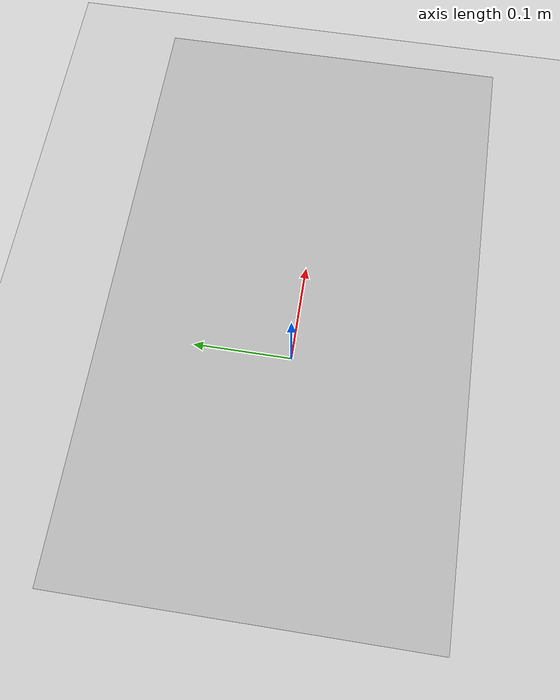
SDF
<?xml version="1.0" ?>
<sdf version="1.9">
  <world name="odometer_test">
    <!-- Земля -->
    <include>
      <uri>https://fuel.gazebosim.org/1.0/OpenRobotics/models/Ground Plane</uri>
    </include>

    <!-- Модель с датчиком -->
    <model name="test_vehicle">
      <pose>0 0 0.1 0 0 0</pose>

      <link name="chassis">
        <inertial>
          <mass>1.0</mass>
          <inertia>
            <ixx>0.01</ixx><iyy>0.01</iyy><izz>0.01</izz>
            <ixy>0</ixy><ixz>0</ixz><iyz>0</iyz>
          </inertia>
        </inertial>
        <visual name="chassis_visual">
          <geometry><box><size>0.5 0.3 0.1</size></box></geometry>
        </visual>
        <collision name="chassis_collision">
          <geometry><box><size>0.5 0.3 0.1</size></box></geometry>
        </collision>
      </link>

      <!-- Сенсор одометра -->
      <link name="sensor_link">
        <pose>0 0 0.05 0 0 0</pose>
        <sensor name="odometer" type="custom" gz:type="odometer">
          <always_on>1</always_on>
          <update_rate>100</update_rate>
          <topic>/odom</topic>
          <plugin filename="/home/laska/gz-sensors/examples/custom_sensor/build/libodometer.so">
            <namespace>odom</namespace>
          </plugin>
        </sensor>
      </link>
    </model>
  </world>
</sdf>
